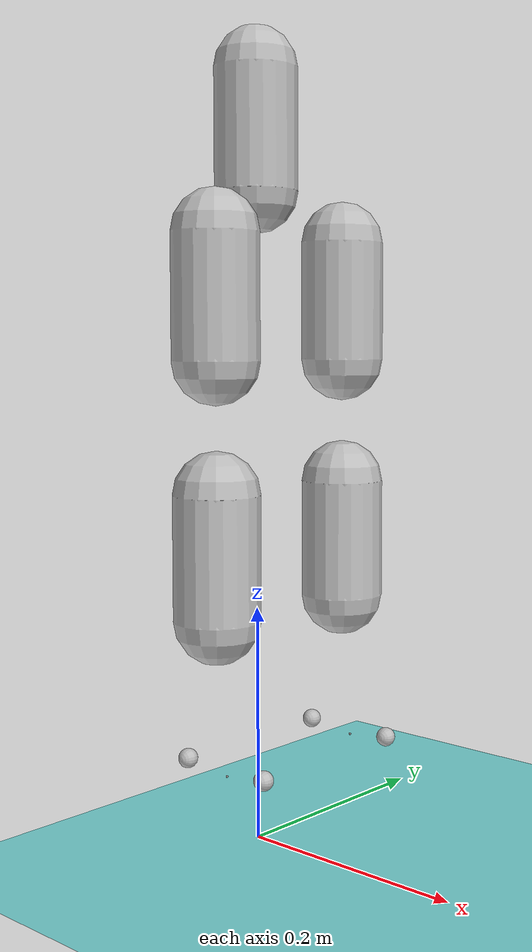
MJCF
<mujoco model="bruce_description">
    <compiler angle="radian" meshdir="../meshes/" autolimits="true" />
  <option timestep='0.001' gravity='0 0 -9.81' iterations="50" tolerance="1e-10" solver="Newton" jacobian="dense" cone="pyramidal" />

  <visual>
    <quality shadowsize='4096'/>
    <map znear='0.01'/>
  </visual>

    <default>
        <geom contype="0" conaffinity="1" condim="3" rgba="0.5 0.6 0.7 1" group="0" />
        <joint damping="0.1" armature="0.01" frictionloss="0.0" />
        <motor ctrllimited="true" ctrlrange="-10.0 10.0" />
        <default class="collision">
          <geom condim="3" group="0" />
        </default>
    <default class="visual">
      <geom group="1" conaffinity="0" contype="0" />
    </default>
    </default>

    <asset>
        <texture type="skybox" builtin="gradient" rgb1="1.0 1.0 1.0" rgb2="1.0 1.0 1.0" width="512" height="512"/>
        <texture name="plane" type="2d" builtin="flat" rgb1="1 1 1" rgb2="1 1 1" width="512" height="512" mark="cross" markrgb="0 0 0"/>
        <material name="plane" reflectance="0.0" texture="plane" texrepeat="3 3" texuniform="true"/>
    </asset>

    <worldbody>
        <geom name='floor' type='plane' contype='1' conaffinity='0' rgba="0.5 0.9 0.9 0.1" material='plane' pos='0 0 0' size='0 0 1'/>

        <body name="bruce-pelvis" pos="0 0 0.55">
            <inertial pos="0.02259605 -0.00011305 0.06140054" mass="1.31688922" fullinertia="0.01335430 0.01023631 0.00547100 -0.00000336 0.00182725 -0.00001163"/>
            <geom class="collision" type="capsule" rgba="0.75294 0.75294 0.75294 1" size="0.035 0.10" fromto="0 0 0 0 0 0.10"/>
            <joint armature="0" damping="0" limited="false" margin="0.01" name="root" pos="0 0 0" type="free"/>

            <!-- Right leg -->
            <site name='imu' size='0.01' pos='0.0 0 0.0'/>

            <body name="hip_yaw_r" pos="0.029216 -0.075856 -0.039765" quat="0.707105 0 0 0.707108">
                <inertial pos="2.71e-06 -0.00024824 0.00522427" quat="0.517691 0.482114 0.518083 0.480784" mass="0.637563" diaginertia="0.0016174 0.00152078 0.000485406"/>
                <joint name="joint_hip_yaw_r" pos="0 0 0" type="hinge" axis="0 0 1" range="-0.785 0.785" damping="0.1"/>
                <body name="hip_pitch_r" quat="0.499998 0.5 0.5 -0.500002">
                <inertial pos="-1.51e-07 0 6.88e-06" quat="0.5 0.5 -0.5 0.5" mass="0.00385748" diaginertia="2.24e-07 2.12e-07 1.41e-07"/>
                    <joint name="joint_hip_pitch_r" pos="0 0 0" type="hinge" axis="0 -1 0" range="-0.4 2.5" damping="0.1"/>
                    <geom class="collision" type="capsule" rgba="0.75294 0.75294 0.75294 1" size="0.035 0.10" fromto="0 0 0 0.10 0 0"/>
                    <body name="hip_roll_r" quat="0.707105 0.707108 0 0">
                      <inertial pos="0.140714 -0.0086817 0.00167429" quat="-0.0210718 0.710934 0.00543456 0.702922" mass="0.72849" diaginertia="0.0181996 0.0179488 0.000479326"/>
                      <joint name="joint_hip_roll_r" pos="0 0 0" axis="0 1 0" range="-0.7854 0.36"/>

                      <body name="knee_pitch_r" pos="0.20495 0 0">
                        <inertial pos="0.0729308 0.0174645 0.00216432" quat="-0.0124752 0.71085 -0.0538621 0.701167" mass="0.0956654" diaginertia="0.00108397 0.00102192 0.000106307"/>
                        <joint name="joint_knee_pitch_r" pos="0 0 0" axis="0 0 1" range="-2.5 0.25"/>

                        <geom class="collision" type="capsule" rgba="0.75294 0.75294 0.75294 1" size="0.035 0.1" fromto="0 0 0 0.1 0 0"/>
                        <body name="ankle_pitch_r" pos="0.19988 0 0">
                          <inertial pos="0.0120775 0.0019746 0.00029511" quat="0.443128 0.545146 -0.456612 0.545855" mass="0.0276265" diaginertia="2.58838e-05 2.09859e-05 5.64035e-06"/>
                          <joint name="joint_ankle_pitch_r" pos="0 0 0" axis="0 0 1" range="-0.5 0.5"/>

                        <geom name="toe_right_collision" type="sphere" pos="0.0185 0.05 0" size="0.008" rgba="0.75294 0.75294 0.75294 1">
                        </geom>
                        <geom name="heel_right_collision" type="sphere" pos="0.0185 -0.035 0" size="0.008" rgba="0.75294 0.75294 0.75294 1">
                        </geom>
                        <site name="rf_sole" size=".001" pos="0.024 0.01 0" quat="0.5 -0.5 -0.5 0.5"/>
                        </body>
                      </body>
                    </body>
                </body>
            </body>

            <!-- Left leg -->
            <body name="hip_yaw_l" pos="0.029216 0.075856 -0.039765" quat="0.707105 0 0 0.707108">
                <inertial pos="0 -0.00020849 0.00528032" quat="0.518836 0.480432 0.518756 0.480506" mass="0.637386" diaginertia="0.00161868 0.00152047 0.0004852"/>
                <joint name="joint_hip_yaw_l" pos="0 0 0" type="hinge" axis="0 0 1" range="-0.7854 0.7854"/>

                <body name="hip_pitch_l" quat="0.499998 0.5 0.5 -0.500002">
                    <inertial pos="-1.51e-07 0 6.88e-06" quat="0.5 0.5 -0.5 0.5" mass="0.00385748" diaginertia="2.24e-07 2.12e-07 1.41e-07"/>
                    <joint name="joint_hip_pitch_l" pos="0 0 0" type="hinge" axis="0 -1 0" range="-0.4 2.5"/>
                    <geom class="collision" type="capsule" rgba="0.75294 0.75294 0.75294 1" size="0.035 0.1" fromto="0 0 0 0.1 0 0"/>
                    <body name="hip_roll_l" quat="0.707105 0.707108 0 0">
                      <inertial pos="0.142447 -0.00832054 -0.00174716" quat="-0.002203 0.702817 0.024599 0.710942" mass="0.720628" diaginertia="0.018195 0.0179541 0.000461885"/>
                      <joint name="joint_hip_roll_l" pos="0 0 0" axis="0 1 0" range="-0.36 0.7854"/>

                      <body name="knee_pitch_l" pos="0.20495 0 0">
                        <inertial pos="0.0730996 0.0178102 -0.00219767" quat="0.0505999 0.70058 0.00930476 0.711716" mass="0.0952654" diaginertia="0.00107995 0.00101966 0.000104635"/>
                        <joint name="joint_knee_pitch_l" pos="0 0 0" axis="0 0 1" range="-2.5 0.25"/>

                        <geom class="collision" type="capsule" rgba="0.75294 0.75294 0.75294 1" size="0.035 0.1" fromto="0 0 0 0.1 0 0"/>
                        <body name="ankle_pitch_l" pos="0.19988 0 0">
                          <inertial pos="0.0123398 0.00253004 -0.00030441" quat="0.455603 0.546571 -0.442281 0.545962" mass="0.0274829" diaginertia="2.60237e-05 2.09939e-05 5.69233e-06"/>
                          <joint name="joint_ankle_pitch_l" pos="0 0 0" axis="0 0 1" range="-0.5 0.5"/>

                        <geom name="toe_left_collision" type="sphere" pos="0.0185 0.05 0" size="0.008" rgba="0.75294 0.75294 0.75294 1">
                        </geom>
                        <geom name="heel_left_collision" type="sphere" pos="0.0185 -0.035 0" size="0.008" rgba="0.75294 0.75294 0.75294 1">
                        </geom>
                        <site name="lf_sole" size=".001" pos="0.024 0.01 0" quat="0.5 -0.5 -0.5 0.5"/>

                        </body>
                      </body>
                    </body>
                </body>
            </body>

          <body name="shoulder_pitch_r" pos="0.029216 -0.12375 0.15299" quat="0.64125396 0.64125396 -0.29798215  0.29798215">
            <inertial pos="-8.5149e-12 -0.00038323 -0.014137" quat="0.999984 0.0057278 0 0" mass="0.0493169" diaginertia="2.507e-05 2.40321e-05 8.31794e-06"/>
            <body name="shoulder_roll_r" quat="0.09572766 0.09572766 -0.70059704  0.70059704">
              <inertial pos="0.0570939 -0.00419463 0.00093738" quat="-0.205082 0.694437 -0.169487 0.66856" mass="0.024" diaginertia="0.000126403 0.000125807 7.29e-06"/>
              <body name="elbow_pitch_r" pos="0.1146 -0.005 0.005" quat="0.38205142 0.38205142 -0.59500984  0.59500984">
                <inertial pos="0.0217884 3.3426e-09 0.0003604" quat="0.499291 0.500708 0.500708 0.499291" mass="0.0524404" diaginertia="7.261e-05 7.10305e-05 7.52949e-06"/>
              </body>
            </body>
          </body>

          <body name="shoulder_pitch_l" pos="0.029216 0.12375 0.15299" quat="0.64125396 -0.64125396 -0.29798215 -0.29798215">
            <inertial pos="8.5077e-12 0.00038323 -0.0141368" quat="0.999984 -0.0057278 0 0" mass="0.0493169" diaginertia="2.507e-05 2.40321e-05 8.31794e-06"/>
            <body name="shoulder_roll_l" quat="0.09572766 0.09572766 -0.70059704  0.70059704">
              <inertial pos="0.0570939 0.00419463 0.00094155" quat="0.207025 0.693936 0.171489 0.667971" mass="0.0313652" diaginertia="0.000165195 0.000164406 9.52871e-06"/>
              <body name="elbow_pitch_l" pos="0.1146 0.005 0.005" quat="0.38205142 -0.38205142  0.59500984  0.59500984">
                <inertial pos="0.0217884 3.3426e-09 0.0003604" quat="0.499291 0.500708 0.500708 0.499291" mass="0.0524404" diaginertia="7.261e-05 7.10305e-05 7.52949e-06"/>
              </body>
            </body>
          </body>

        </body>
    </worldbody>
  <!-- !!! ignore hip parts self-collision to make the model stable in mujoco -->
  <contact>
    <exclude body1="hip_pitch_r" body2="hip_yaw_r"/>
    <exclude body1="hip_pitch_l" body2="hip_yaw_l"/>
    <exclude body1="hip_pitch_r" body2="hip_roll_r"/>
    <exclude body1="hip_pitch_l" body2="hip_roll_l"/>
    <exclude body1="hip_yaw_r" body2="hip_roll_r"/>
    <exclude body1="hip_yaw_l" body2="hip_roll_l"/>
  </contact>

    <actuator>
    <motor name="joint_hip_yaw_l_motor" joint="joint_hip_yaw_l" gear="1"/>
    <motor name="joint_hip_pitch_l_motor" joint="joint_hip_pitch_l" gear="1"/>
    <motor name="joint_hip_roll_l_motor" joint="joint_hip_roll_l" gear="1"/>
    <motor name="joint_knee_pitch_l_motor" joint="joint_knee_pitch_l" gear="1"/>
    <motor name="joint_ankle_pitch_l_motor" joint="joint_ankle_pitch_l" gear="1"/>
    <motor name="joint_hip_yaw_r_motor" joint="joint_hip_yaw_r" gear="1"/>
    <motor name="joint_hip_pitch_r_motor" joint="joint_hip_pitch_r" gear="1"/>
    <motor name="joint_hip_roll_r_motor" joint="joint_hip_roll_r" gear="1"/>
    <motor name="joint_knee_pitch_r_motor" joint="joint_knee_pitch_r" gear="1"/>
    <motor name="joint_ankle_pitch_r_motor" joint="joint_ankle_pitch_r" gear="1"/>
    </actuator>
     <sensor>
        <framequat     name='orientation' objtype='site' noise='0.001' objname='imu'/>
        <framepos     name='position' objtype='site' noise='0.001' objname='imu'/>
        <gyro          name='angular-velocity'    site='imu' noise='0.005' cutoff='34.9'/>
        <velocimeter   name='linear-velocity'     site='imu' noise='0.001' cutoff='30'/>
        <accelerometer name='linear-acceleration' site='imu' noise='0.005' cutoff='157'/>
        <magnetometer  name='magnetometer'        site='imu'/>

    </sensor>
<keyframe>
<key time="0" qpos="0.   0.  0.45 1.   0.   0.   0  0.  0.39  0. -0.64  0.3   0.  0.39  0. -0.64  0.3" />
</keyframe>
</mujoco>
